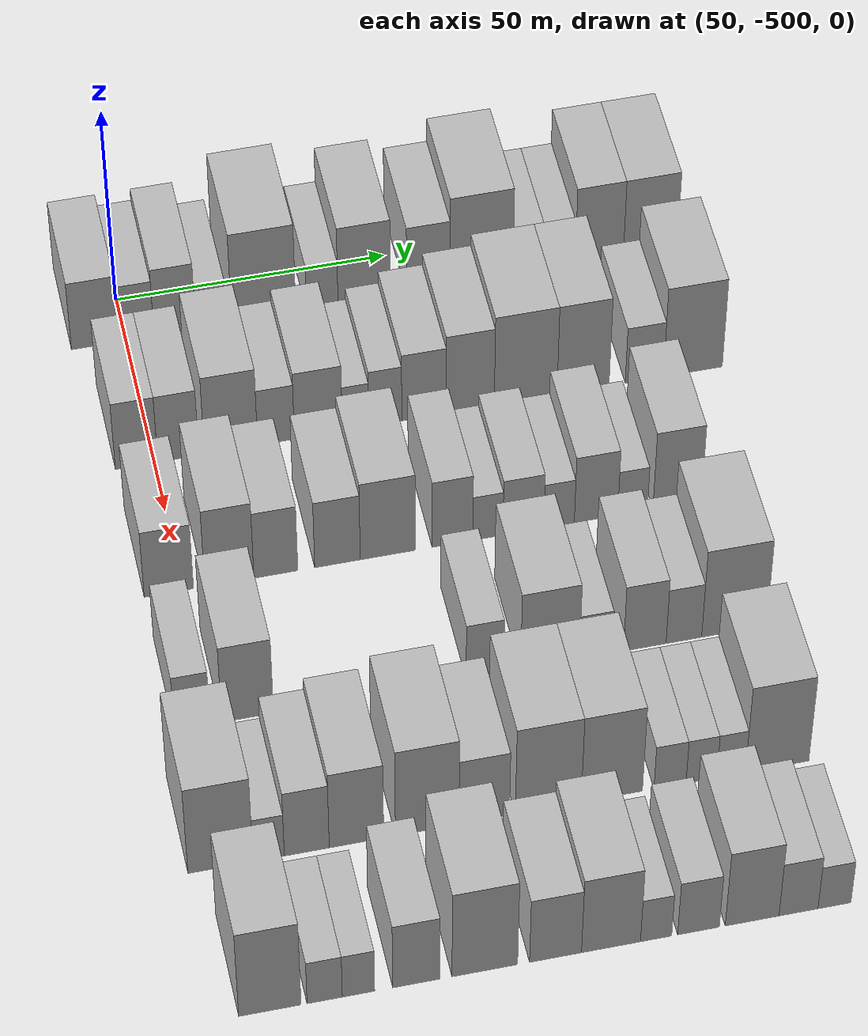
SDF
<sdf version="1.6">
 <world name="default">
  <model name="building_1">
   <static>1</static>
   <pose>50.0000 -505.6453 0 0.000000 0.000000 0.000000</pose>
   <link name="link">
    <pose>0 0 9.00 0 0 0</pose>
    <collision name="collision"><geometry><box><size>20.0000 8.7094 18.0000</size></box></geometry></collision>
    <visual name="visual">
     <cast_shadows>0</cast_shadows>
     <geometry><box><size>20.0000 8.7094 18.0000</size></box></geometry>
     <material>
      <script>
       <uri>model://HANNAS_wall/materials/scripts</uri>
       <uri>model://HANNAS_wall/materials/textures</uri>
       <name>vrc/HANNAS_wall</name>
      </script>
     </material>
    </visual>
   </link>
  </model>
  <model name="building_2">
   <static>1</static>
   <pose>50.0000 -498.0498 0 0.000000 0.000000 0.000000</pose>
   <link name="link">
    <pose>0 0 7.50 0 0 0</pose>
    <collision name="collision"><geometry><box><size>20.0000 6.4816 15.0000</size></box></geometry></collision>
    <visual name="visual">
     <cast_shadows>0</cast_shadows>
     <geometry><box><size>20.0000 6.4816 15.0000</size></box></geometry>
     <material>
      <script>
       <uri>model://HANNAS_wall/materials/scripts</uri>
       <uri>model://HANNAS_wall/materials/textures</uri>
       <name>vrc/HANNAS_wall</name>
      </script>
     </material>
    </visual>
   </link>
  </model>
  <model name="building_3">
   <static>1</static>
   <pose>50.0000 -490.9728 0 0.000000 0.000000 0.000000</pose>
   <link name="link">
    <pose>0 0 9.00 0 0 0</pose>
    <collision name="collision"><geometry><box><size>20.0000 7.6724 18.0000</size></box></geometry></collision>
    <visual name="visual">
     <cast_shadows>0</cast_shadows>
     <geometry><box><size>20.0000 7.6724 18.0000</size></box></geometry>
     <material>
      <script>
       <uri>model://HANNAS_wall/materials/scripts</uri>
       <uri>model://HANNAS_wall/materials/textures</uri>
       <name>vrc/HANNAS_wall</name>
      </script>
     </material>
    </visual>
   </link>
  </model>
  <model name="building_4">
   <static>1</static>
   <pose>50.0000 -484.3131 0 0.000000 0.000000 0.000000</pose>
   <link name="link">
    <pose>0 0 6.00 0 0 0</pose>
    <collision name="collision"><geometry><box><size>20.0000 5.6470 12.0000</size></box></geometry></collision>
    <visual name="visual">
     <cast_shadows>0</cast_shadows>
     <geometry><box><size>20.0000 5.6470 12.0000</size></box></geometry>
     <material>
      <script>
       <uri>model://HANNAS_wall/materials/scripts</uri>
       <uri>model://HANNAS_wall/materials/textures</uri>
       <name>vrc/HANNAS_wall</name>
      </script>
     </material>
    </visual>
   </link>
  </model>
  <model name="building_5">
   <static>1</static>
   <pose>50.0000 -474.5490 0 0.000000 0.000000 0.000000</pose>
   <link name="link">
    <pose>0 0 12.00 0 0 0</pose>
    <collision name="collision"><geometry><box><size>20.0000 11.8813 24.0000</size></box></geometry></collision>
    <visual name="visual">
     <cast_shadows>0</cast_shadows>
     <geometry><box><size>20.0000 11.8813 24.0000</size></box></geometry>
     <material>
      <script>
       <uri>model://HANNAS_wall/materials/scripts</uri>
       <uri>model://HANNAS_wall/materials/textures</uri>
       <name>vrc/HANNAS_wall</name>
      </script>
     </material>
    </visual>
   </link>
  </model>
  <model name="building_6">
   <static>1</static>
   <pose>50.0000 -463.6855 0 0.000000 0.000000 0.000000</pose>
   <link name="link">
    <pose>0 0 6.00 0 0 0</pose>
    <collision name="collision"><geometry><box><size>20.0000 5.8457 12.0000</size></box></geometry></collision>
    <visual name="visual">
     <cast_shadows>0</cast_shadows>
     <geometry><box><size>20.0000 5.8457 12.0000</size></box></geometry>
     <material>
      <script>
       <uri>model://HANNAS_wall/materials/scripts</uri>
       <uri>model://HANNAS_wall/materials/textures</uri>
       <name>vrc/HANNAS_wall</name>
      </script>
     </material>
    </visual>
   </link>
  </model>
  <model name="building_7">
   <static>1</static>
   <pose>50.0000 -455.8654 0 0.000000 0.000000 0.000000</pose>
   <link name="link">
    <pose>0 0 10.50 0 0 0</pose>
    <collision name="collision"><geometry><box><size>20.0000 9.7946 21.0000</size></box></geometry></collision>
    <visual name="visual">
     <cast_shadows>0</cast_shadows>
     <geometry><box><size>20.0000 9.7946 21.0000</size></box></geometry>
     <material>
      <script>
       <uri>model://HANNAS_wall/materials/scripts</uri>
       <uri>model://HANNAS_wall/materials/textures</uri>
       <name>vrc/HANNAS_wall</name>
      </script>
     </material>
    </visual>
   </link>
  </model>
  <model name="building_8">
   <static>1</static>
   <pose>50.0000 -443.9238 0 0.000000 0.000000 0.000000</pose>
   <link name="link">
    <pose>0 0 9.00 0 0 0</pose>
    <collision name="collision"><geometry><box><size>20.0000 8.0886 18.0000</size></box></geometry></collision>
    <visual name="visual">
     <cast_shadows>0</cast_shadows>
     <geometry><box><size>20.0000 8.0886 18.0000</size></box></geometry>
     <material>
      <script>
       <uri>model://HANNAS_wall/materials/scripts</uri>
       <uri>model://HANNAS_wall/materials/textures</uri>
       <name>vrc/HANNAS_wall</name>
      </script>
     </material>
    </visual>
   </link>
  </model>
  <model name="building_9">
   <static>1</static>
   <pose>50.0000 -433.9805 0 0.000000 0.000000 0.000000</pose>
   <link name="link">
    <pose>0 0 12.00 0 0 0</pose>
    <collision name="collision"><geometry><box><size>20.0000 11.7979 24.0000</size></box></geometry></collision>
    <visual name="visual">
     <cast_shadows>0</cast_shadows>
     <geometry><box><size>20.0000 11.7979 24.0000</size></box></geometry>
     <material>
      <script>
       <uri>model://HANNAS_wall/materials/scripts</uri>
       <uri>model://HANNAS_wall/materials/textures</uri>
       <name>vrc/HANNAS_wall</name>
      </script>
     </material>
    </visual>
   </link>
  </model>
  <model name="building_10">
   <static>1</static>
   <pose>50.0000 -425.1136 0 0.000000 0.000000 0.000000</pose>
   <link name="link">
    <pose>0 0 6.00 0 0 0</pose>
    <collision name="collision"><geometry><box><size>20.0000 5.9361 12.0000</size></box></geometry></collision>
    <visual name="visual">
     <cast_shadows>0</cast_shadows>
     <geometry><box><size>20.0000 5.9361 12.0000</size></box></geometry>
     <material>
      <script>
       <uri>model://HANNAS_wall/materials/scripts</uri>
       <uri>model://HANNAS_wall/materials/textures</uri>
       <name>vrc/HANNAS_wall</name>
      </script>
     </material>
    </visual>
   </link>
  </model>
  <model name="building_11">
   <static>1</static>
   <pose>50.0000 -419.2511 0 0.000000 0.000000 0.000000</pose>
   <link name="link">
    <pose>0 0 6.00 0 0 0</pose>
    <collision name="collision"><geometry><box><size>20.0000 5.7888 12.0000</size></box></geometry></collision>
    <visual name="visual">
     <cast_shadows>0</cast_shadows>
     <geometry><box><size>20.0000 5.7888 12.0000</size></box></geometry>
     <material>
      <script>
       <uri>model://HANNAS_wall/materials/scripts</uri>
       <uri>model://HANNAS_wall/materials/textures</uri>
       <name>vrc/HANNAS_wall</name>
      </script>
     </material>
    </visual>
   </link>
  </model>
  <model name="building_12">
   <static>1</static>
   <pose>50.0000 -411.7991 0 0.000000 0.000000 0.000000</pose>
   <link name="link">
    <pose>0 0 10.50 0 0 0</pose>
    <collision name="collision"><geometry><box><size>20.0000 9.1152 21.0000</size></box></geometry></collision>
    <visual name="visual">
     <cast_shadows>0</cast_shadows>
     <geometry><box><size>20.0000 9.1152 21.0000</size></box></geometry>
     <material>
      <script>
       <uri>model://HANNAS_wall/materials/scripts</uri>
       <uri>model://HANNAS_wall/materials/textures</uri>
       <name>vrc/HANNAS_wall</name>
      </script>
     </material>
    </visual>
   </link>
  </model>
  <model name="building_13">
   <static>1</static>
   <pose>50.0000 -402.1448 0 0.000000 0.000000 0.000000</pose>
   <link name="link">
    <pose>0 0 10.50 0 0 0</pose>
    <collision name="collision"><geometry><box><size>20.0000 10.1934 21.0000</size></box></geometry></collision>
    <visual name="visual">
     <cast_shadows>0</cast_shadows>
     <geometry><box><size>20.0000 10.1934 21.0000</size></box></geometry>
     <material>
      <script>
       <uri>model://HANNAS_wall/materials/scripts</uri>
       <uri>model://HANNAS_wall/materials/textures</uri>
       <name>vrc/HANNAS_wall</name>
      </script>
     </material>
    </visual>
   </link>
  </model>
  <model name="building_116">
   <static>1</static>
   <pose>79.0000 -503.1869 0 0.000000 0.000000 0.000000</pose>
   <link name="link">
    <pose>0 0 9.00 0 0 0</pose>
    <collision name="collision"><geometry><box><size>20.0000 7.6262 18.0000</size></box></geometry></collision>
    <visual name="visual">
     <cast_shadows>0</cast_shadows>
     <geometry><box><size>20.0000 7.6262 18.0000</size></box></geometry>
     <material>
      <script>
       <uri>model://HANNAS_wall/materials/scripts</uri>
       <uri>model://HANNAS_wall/materials/textures</uri>
       <name>vrc/HANNAS_wall</name>
      </script>
     </material>
    </visual>
   </link>
  </model>
  <model name="building_117">
   <static>1</static>
   <pose>79.0000 -495.6692 0 0.000000 0.000000 0.000000</pose>
   <link name="link">
    <pose>0 0 9.00 0 0 0</pose>
    <collision name="collision"><geometry><box><size>20.0000 7.4091 18.0000</size></box></geometry></collision>
    <visual name="visual">
     <cast_shadows>0</cast_shadows>
     <geometry><box><size>20.0000 7.4091 18.0000</size></box></geometry>
     <material>
      <script>
       <uri>model://HANNAS_wall/materials/scripts</uri>
       <uri>model://HANNAS_wall/materials/textures</uri>
       <name>vrc/HANNAS_wall</name>
      </script>
     </material>
    </visual>
   </link>
  </model>
  <model name="building_118">
   <static>1</static>
   <pose>79.0000 -486.1451 0 0.000000 0.000000 0.000000</pose>
   <link name="link">
    <pose>0 0 10.50 0 0 0</pose>
    <collision name="collision"><geometry><box><size>20.0000 9.6391 21.0000</size></box></geometry></collision>
    <visual name="visual">
     <cast_shadows>0</cast_shadows>
     <geometry><box><size>20.0000 9.6391 21.0000</size></box></geometry>
     <material>
      <script>
       <uri>model://HANNAS_wall/materials/scripts</uri>
       <uri>model://HANNAS_wall/materials/textures</uri>
       <name>vrc/HANNAS_wall</name>
      </script>
     </material>
    </visual>
   </link>
  </model>
  <model name="building_119">
   <static>1</static>
   <pose>79.0000 -477.9860 0 0.000000 0.000000 0.000000</pose>
   <link name="link">
    <pose>0 0 7.50 0 0 0</pose>
    <collision name="collision"><geometry><box><size>20.0000 6.6792 15.0000</size></box></geometry></collision>
    <visual name="visual">
     <cast_shadows>0</cast_shadows>
     <geometry><box><size>20.0000 6.6792 15.0000</size></box></geometry>
     <material>
      <script>
       <uri>model://HANNAS_wall/materials/scripts</uri>
       <uri>model://HANNAS_wall/materials/textures</uri>
       <name>vrc/HANNAS_wall</name>
      </script>
     </material>
    </visual>
   </link>
  </model>
  <model name="building_120">
   <static>1</static>
   <pose>79.0000 -470.2939 0 0.000000 0.000000 0.000000</pose>
   <link name="link">
    <pose>0 0 9.00 0 0 0</pose>
    <collision name="collision"><geometry><box><size>20.0000 8.7049 18.0000</size></box></geometry></collision>
    <visual name="visual">
     <cast_shadows>0</cast_shadows>
     <geometry><box><size>20.0000 8.7049 18.0000</size></box></geometry>
     <material>
      <script>
       <uri>model://HANNAS_wall/materials/scripts</uri>
       <uri>model://HANNAS_wall/materials/textures</uri>
       <name>vrc/HANNAS_wall</name>
      </script>
     </material>
    </visual>
   </link>
  </model>
  <model name="building_121">
   <static>1</static>
   <pose>79.0000 -463.5202 0 0.000000 0.000000 0.000000</pose>
   <link name="link">
    <pose>0 0 6.00 0 0 0</pose>
    <collision name="collision"><geometry><box><size>20.0000 4.8425 12.0000</size></box></geometry></collision>
    <visual name="visual">
     <cast_shadows>0</cast_shadows>
     <geometry><box><size>20.0000 4.8425 12.0000</size></box></geometry>
     <material>
      <script>
       <uri>model://HANNAS_wall/materials/scripts</uri>
       <uri>model://HANNAS_wall/materials/textures</uri>
       <name>vrc/HANNAS_wall</name>
      </script>
     </material>
    </visual>
   </link>
  </model>
  <model name="building_122">
   <static>1</static>
   <pose>79.0000 -458.0935 0 0.000000 0.000000 0.000000</pose>
   <link name="link">
    <pose>0 0 7.50 0 0 0</pose>
    <collision name="collision"><geometry><box><size>20.0000 6.0108 15.0000</size></box></geometry></collision>
    <visual name="visual">
     <cast_shadows>0</cast_shadows>
     <geometry><box><size>20.0000 6.0108 15.0000</size></box></geometry>
     <material>
      <script>
       <uri>model://HANNAS_wall/materials/scripts</uri>
       <uri>model://HANNAS_wall/materials/textures</uri>
       <name>vrc/HANNAS_wall</name>
      </script>
     </material>
    </visual>
   </link>
  </model>
  <model name="building_123">
   <static>1</static>
   <pose>79.0000 -451.0458 0 0.000000 0.000000 0.000000</pose>
   <link name="link">
    <pose>0 0 9.00 0 0 0</pose>
    <collision name="collision"><geometry><box><size>20.0000 8.0846 18.0000</size></box></geometry></collision>
    <visual name="visual">
     <cast_shadows>0</cast_shadows>
     <geometry><box><size>20.0000 8.0846 18.0000</size></box></geometry>
     <material>
      <script>
       <uri>model://HANNAS_wall/materials/scripts</uri>
       <uri>model://HANNAS_wall/materials/textures</uri>
       <name>vrc/HANNAS_wall</name>
      </script>
     </material>
    </visual>
   </link>
  </model>
  <model name="building_124">
   <static>1</static>
   <pose>79.0000 -442.5810 0 0.000000 0.000000 0.000000</pose>
   <link name="link">
    <pose>0 0 10.50 0 0 0</pose>
    <collision name="collision"><geometry><box><size>20.0000 8.8451 21.0000</size></box></geometry></collision>
    <visual name="visual">
     <cast_shadows>0</cast_shadows>
     <geometry><box><size>20.0000 8.8451 21.0000</size></box></geometry>
     <material>
      <script>
       <uri>model://HANNAS_wall/materials/scripts</uri>
       <uri>model://HANNAS_wall/materials/textures</uri>
       <name>vrc/HANNAS_wall</name>
      </script>
     </material>
    </visual>
   </link>
  </model>
  <model name="building_125">
   <static>1</static>
   <pose>79.0000 -432.3821 0 0.000000 0.000000 0.000000</pose>
   <link name="link">
    <pose>0 0 12.00 0 0 0</pose>
    <collision name="collision"><geometry><box><size>20.0000 11.5528 24.0000</size></box></geometry></collision>
    <visual name="visual">
     <cast_shadows>0</cast_shadows>
     <geometry><box><size>20.0000 11.5528 24.0000</size></box></geometry>
     <material>
      <script>
       <uri>model://HANNAS_wall/materials/scripts</uri>
       <uri>model://HANNAS_wall/materials/textures</uri>
       <name>vrc/HANNAS_wall</name>
      </script>
     </material>
    </visual>
   </link>
  </model>
  <model name="building_126">
   <static>1</static>
   <pose>79.0000 -421.8019 0 0.000000 0.000000 0.000000</pose>
   <link name="link">
    <pose>0 0 12.00 0 0 0</pose>
    <collision name="collision"><geometry><box><size>20.0000 9.6076 24.0000</size></box></geometry></collision>
    <visual name="visual">
     <cast_shadows>0</cast_shadows>
     <geometry><box><size>20.0000 9.6076 24.0000</size></box></geometry>
     <material>
      <script>
       <uri>model://HANNAS_wall/materials/scripts</uri>
       <uri>model://HANNAS_wall/materials/textures</uri>
       <name>vrc/HANNAS_wall</name>
      </script>
     </material>
    </visual>
   </link>
  </model>
  <model name="building_127">
   <static>1</static>
   <pose>79.0000 -410.4574 0 0.000000 0.000000 0.000000</pose>
   <link name="link">
    <pose>0 0 7.50 0 0 0</pose>
    <collision name="collision"><geometry><box><size>20.0000 7.0812 15.0000</size></box></geometry></collision>
    <visual name="visual">
     <cast_shadows>0</cast_shadows>
     <geometry><box><size>20.0000 7.0812 15.0000</size></box></geometry>
     <material>
      <script>
       <uri>model://HANNAS_wall/materials/scripts</uri>
       <uri>model://HANNAS_wall/materials/textures</uri>
       <name>vrc/HANNAS_wall</name>
      </script>
     </material>
    </visual>
   </link>
  </model>
  <model name="building_128">
   <static>1</static>
   <pose>79.0000 -401.4521 0 0.000000 0.000000 0.000000</pose>
   <link name="link">
    <pose>0 0 12.00 0 0 0</pose>
    <collision name="collision"><geometry><box><size>20.0000 10.9295 24.0000</size></box></geometry></collision>
    <visual name="visual">
     <cast_shadows>0</cast_shadows>
     <geometry><box><size>20.0000 10.9295 24.0000</size></box></geometry>
     <material>
      <script>
       <uri>model://HANNAS_wall/materials/scripts</uri>
       <uri>model://HANNAS_wall/materials/textures</uri>
       <name>vrc/HANNAS_wall</name>
      </script>
     </material>
    </visual>
   </link>
  </model>
  <model name="building_231">
   <static>1</static>
   <pose>108.0000 -502.6519 0 0.000000 0.000000 0.000000</pose>
   <link name="link">
    <pose>0 0 9.00 0 0 0</pose>
    <collision name="collision"><geometry><box><size>20.0000 8.6961 18.0000</size></box></geometry></collision>
    <visual name="visual">
     <cast_shadows>0</cast_shadows>
     <geometry><box><size>20.0000 8.6961 18.0000</size></box></geometry>
     <material>
      <script>
       <uri>model://HANNAS_wall/materials/scripts</uri>
       <uri>model://HANNAS_wall/materials/textures</uri>
       <name>vrc/HANNAS_wall</name>
      </script>
     </material>
    </visual>
   </link>
  </model>
  <model name="building_232">
   <static>1</static>
   <pose>108.0000 -491.9632 0 0.000000 0.000000 0.000000</pose>
   <link name="link">
    <pose>0 0 10.50 0 0 0</pose>
    <collision name="collision"><geometry><box><size>20.0000 8.6814 21.0000</size></box></geometry></collision>
    <visual name="visual">
     <cast_shadows>0</cast_shadows>
     <geometry><box><size>20.0000 8.6814 21.0000</size></box></geometry>
     <material>
      <script>
       <uri>model://HANNAS_wall/materials/scripts</uri>
       <uri>model://HANNAS_wall/materials/textures</uri>
       <name>vrc/HANNAS_wall</name>
      </script>
     </material>
    </visual>
   </link>
  </model>
  <model name="building_233">
   <static>1</static>
   <pose>108.0000 -483.7270 0 0.000000 0.000000 0.000000</pose>
   <link name="link">
    <pose>0 0 9.00 0 0 0</pose>
    <collision name="collision"><geometry><box><size>20.0000 7.7909 18.0000</size></box></geometry></collision>
    <visual name="visual">
     <cast_shadows>0</cast_shadows>
     <geometry><box><size>20.0000 7.7909 18.0000</size></box></geometry>
     <material>
      <script>
       <uri>model://HANNAS_wall/materials/scripts</uri>
       <uri>model://HANNAS_wall/materials/textures</uri>
       <name>vrc/HANNAS_wall</name>
      </script>
     </material>
    </visual>
   </link>
  </model>
  <model name="building_234">
   <static>1</static>
   <pose>108.0000 -472.7758 0 0.000000 0.000000 0.000000</pose>
   <link name="link">
    <pose>0 0 9.00 0 0 0</pose>
    <collision name="collision"><geometry><box><size>20.0000 8.1114 18.0000</size></box></geometry></collision>
    <visual name="visual">
     <cast_shadows>0</cast_shadows>
     <geometry><box><size>20.0000 8.1114 18.0000</size></box></geometry>
     <material>
      <script>
       <uri>model://HANNAS_wall/materials/scripts</uri>
       <uri>model://HANNAS_wall/materials/textures</uri>
       <name>vrc/HANNAS_wall</name>
      </script>
     </material>
    </visual>
   </link>
  </model>
  <model name="building_235">
   <static>1</static>
   <pose>108.0000 -463.8039 0 0.000000 0.000000 0.000000</pose>
   <link name="link">
    <pose>0 0 10.50 0 0 0</pose>
    <collision name="collision"><geometry><box><size>20.0000 9.8325 21.0000</size></box></geometry></collision>
    <visual name="visual">
     <cast_shadows>0</cast_shadows>
     <geometry><box><size>20.0000 9.8325 21.0000</size></box></geometry>
     <material>
      <script>
       <uri>model://HANNAS_wall/materials/scripts</uri>
       <uri>model://HANNAS_wall/materials/textures</uri>
       <name>vrc/HANNAS_wall</name>
      </script>
     </material>
    </visual>
   </link>
  </model>
  <model name="building_236">
   <static>1</static>
   <pose>108.0000 -452.2452 0 0.000000 0.000000 0.000000</pose>
   <link name="link">
    <pose>0 0 9.00 0 0 0</pose>
    <collision name="collision"><geometry><box><size>20.0000 7.2849 18.0000</size></box></geometry></collision>
    <visual name="visual">
     <cast_shadows>0</cast_shadows>
     <geometry><box><size>20.0000 7.2849 18.0000</size></box></geometry>
     <material>
      <script>
       <uri>model://HANNAS_wall/materials/scripts</uri>
       <uri>model://HANNAS_wall/materials/textures</uri>
       <name>vrc/HANNAS_wall</name>
      </script>
     </material>
    </visual>
   </link>
  </model>
  <model name="building_237">
   <static>1</static>
   <pose>108.0000 -445.9034 0 0.000000 0.000000 0.000000</pose>
   <link name="link">
    <pose>0 0 6.00 0 0 0</pose>
    <collision name="collision"><geometry><box><size>20.0000 5.3988 12.0000</size></box></geometry></collision>
    <visual name="visual">
     <cast_shadows>0</cast_shadows>
     <geometry><box><size>20.0000 5.3988 12.0000</size></box></geometry>
     <material>
      <script>
       <uri>model://HANNAS_wall/materials/scripts</uri>
       <uri>model://HANNAS_wall/materials/textures</uri>
       <name>vrc/HANNAS_wall</name>
      </script>
     </material>
    </visual>
   </link>
  </model>
  <model name="building_238">
   <static>1</static>
   <pose>108.0000 -439.5211 0 0.000000 0.000000 0.000000</pose>
   <link name="link">
    <pose>0 0 7.50 0 0 0</pose>
    <collision name="collision"><geometry><box><size>20.0000 7.3658 15.0000</size></box></geometry></collision>
    <visual name="visual">
     <cast_shadows>0</cast_shadows>
     <geometry><box><size>20.0000 7.3658 15.0000</size></box></geometry>
     <material>
      <script>
       <uri>model://HANNAS_wall/materials/scripts</uri>
       <uri>model://HANNAS_wall/materials/textures</uri>
       <name>vrc/HANNAS_wall</name>
      </script>
     </material>
    </visual>
   </link>
  </model>
  <model name="building_239">
   <static>1</static>
   <pose>108.0000 -433.0848 0 0.000000 0.000000 0.000000</pose>
   <link name="link">
    <pose>0 0 6.00 0 0 0</pose>
    <collision name="collision"><geometry><box><size>20.0000 5.5068 12.0000</size></box></geometry></collision>
    <visual name="visual">
     <cast_shadows>0</cast_shadows>
     <geometry><box><size>20.0000 5.5068 12.0000</size></box></geometry>
     <material>
      <script>
       <uri>model://HANNAS_wall/materials/scripts</uri>
       <uri>model://HANNAS_wall/materials/textures</uri>
       <name>vrc/HANNAS_wall</name>
      </script>
     </material>
    </visual>
   </link>
  </model>
  <model name="building_240">
   <static>1</static>
   <pose>108.0000 -426.4070 0 0.000000 0.000000 0.000000</pose>
   <link name="link">
    <pose>0 0 9.00 0 0 0</pose>
    <collision name="collision"><geometry><box><size>20.0000 7.8487 18.0000</size></box></geometry></collision>
    <visual name="visual">
     <cast_shadows>0</cast_shadows>
     <geometry><box><size>20.0000 7.8487 18.0000</size></box></geometry>
     <material>
      <script>
       <uri>model://HANNAS_wall/materials/scripts</uri>
       <uri>model://HANNAS_wall/materials/textures</uri>
       <name>vrc/HANNAS_wall</name>
      </script>
     </material>
    </visual>
   </link>
  </model>
  <model name="building_241">
   <static>1</static>
   <pose>108.0000 -419.7957 0 0.000000 0.000000 0.000000</pose>
   <link name="link">
    <pose>0 0 6.00 0 0 0</pose>
    <collision name="collision"><geometry><box><size>20.0000 5.3739 12.0000</size></box></geometry></collision>
    <visual name="visual">
     <cast_shadows>0</cast_shadows>
     <geometry><box><size>20.0000 5.3739 12.0000</size></box></geometry>
     <material>
      <script>
       <uri>model://HANNAS_wall/materials/scripts</uri>
       <uri>model://HANNAS_wall/materials/textures</uri>
       <name>vrc/HANNAS_wall</name>
      </script>
     </material>
    </visual>
   </link>
  </model>
  <model name="building_242">
   <static>1</static>
   <pose>108.0000 -411.7180 0 0.000000 0.000000 0.000000</pose>
   <link name="link">
    <pose>0 0 10.50 0 0 0</pose>
    <collision name="collision"><geometry><box><size>20.0000 8.7815 21.0000</size></box></geometry></collision>
    <visual name="visual">
     <cast_shadows>0</cast_shadows>
     <geometry><box><size>20.0000 8.7815 21.0000</size></box></geometry>
     <material>
      <script>
       <uri>model://HANNAS_wall/materials/scripts</uri>
       <uri>model://HANNAS_wall/materials/textures</uri>
       <name>vrc/HANNAS_wall</name>
      </script>
     </material>
    </visual>
   </link>
  </model>
  <model name="building_347">
   <static>1</static>
   <pose>137.0000 -503.9081 0 0.000000 0.000000 0.000000</pose>
   <link name="link">
    <pose>0 0 7.50 0 0 0</pose>
    <collision name="collision"><geometry><box><size>20.0000 6.1839 15.0000</size></box></geometry></collision>
    <visual name="visual">
     <cast_shadows>0</cast_shadows>
     <geometry><box><size>20.0000 6.1839 15.0000</size></box></geometry>
     <material>
      <script>
       <uri>model://HANNAS_wall/materials/scripts</uri>
       <uri>model://HANNAS_wall/materials/textures</uri>
       <name>vrc/HANNAS_wall</name>
      </script>
     </material>
    </visual>
   </link>
  </model>
  <model name="building_348">
   <static>1</static>
   <pose>137.0000 -494.3367 0 0.000000 0.000000 0.000000</pose>
   <link name="link">
    <pose>0 0 10.50 0 0 0</pose>
    <collision name="collision"><geometry><box><size>20.0000 8.9589 21.0000</size></box></geometry></collision>
    <visual name="visual">
     <cast_shadows>0</cast_shadows>
     <geometry><box><size>20.0000 8.9589 21.0000</size></box></geometry>
     <material>
      <script>
       <uri>model://HANNAS_wall/materials/scripts</uri>
       <uri>model://HANNAS_wall/materials/textures</uri>
       <name>vrc/HANNAS_wall</name>
      </script>
     </material>
    </visual>
   </link>
  </model>
  <model name="building_349">
   <static>1</static>
   <pose>137.0000 -453.0053 0 0.000000 0.000000 0.000000</pose>
   <link name="link">
    <pose>0 0 7.50 0 0 0</pose>
    <collision name="collision"><geometry><box><size>20.0000 6.5680 15.0000</size></box></geometry></collision>
    <visual name="visual">
     <cast_shadows>0</cast_shadows>
     <geometry><box><size>20.0000 6.5680 15.0000</size></box></geometry>
     <material>
      <script>
       <uri>model://HANNAS_wall/materials/scripts</uri>
       <uri>model://HANNAS_wall/materials/textures</uri>
       <name>vrc/HANNAS_wall</name>
      </script>
     </material>
    </visual>
   </link>
  </model>
  <model name="building_350">
   <static>1</static>
   <pose>137.0000 -441.5563 0 0.000000 0.000000 0.000000</pose>
   <link name="link">
    <pose>0 0 10.50 0 0 0</pose>
    <collision name="collision"><geometry><box><size>20.0000 10.3300 21.0000</size></box></geometry></collision>
    <visual name="visual">
     <cast_shadows>0</cast_shadows>
     <geometry><box><size>20.0000 10.3300 21.0000</size></box></geometry>
     <material>
      <script>
       <uri>model://HANNAS_wall/materials/scripts</uri>
       <uri>model://HANNAS_wall/materials/textures</uri>
       <name>vrc/HANNAS_wall</name>
      </script>
     </material>
    </visual>
   </link>
  </model>
  <model name="building_351">
   <static>1</static>
   <pose>137.0000 -433.4831 0 0.000000 0.000000 0.000000</pose>
   <link name="link">
    <pose>0 0 6.00 0 0 0</pose>
    <collision name="collision"><geometry><box><size>20.0000 5.8165 12.0000</size></box></geometry></collision>
    <visual name="visual">
     <cast_shadows>0</cast_shadows>
     <geometry><box><size>20.0000 5.8165 12.0000</size></box></geometry>
     <material>
      <script>
       <uri>model://HANNAS_wall/materials/scripts</uri>
       <uri>model://HANNAS_wall/materials/textures</uri>
       <name>vrc/HANNAS_wall</name>
      </script>
     </material>
    </visual>
   </link>
  </model>
  <model name="building_352">
   <static>1</static>
   <pose>137.0000 -424.7986 0 0.000000 0.000000 0.000000</pose>
   <link name="link">
    <pose>0 0 9.00 0 0 0</pose>
    <collision name="collision"><geometry><box><size>20.0000 7.5524 18.0000</size></box></geometry></collision>
    <visual name="visual">
     <cast_shadows>0</cast_shadows>
     <geometry><box><size>20.0000 7.5524 18.0000</size></box></geometry>
     <material>
      <script>
       <uri>model://HANNAS_wall/materials/scripts</uri>
       <uri>model://HANNAS_wall/materials/textures</uri>
       <name>vrc/HANNAS_wall</name>
      </script>
     </material>
    </visual>
   </link>
  </model>
  <model name="building_353">
   <static>1</static>
   <pose>137.0000 -417.8656 0 0.000000 0.000000 0.000000</pose>
   <link name="link">
    <pose>0 0 7.50 0 0 0</pose>
    <collision name="collision"><geometry><box><size>20.0000 6.3137 15.0000</size></box></geometry></collision>
    <visual name="visual">
     <cast_shadows>0</cast_shadows>
     <geometry><box><size>20.0000 6.3137 15.0000</size></box></geometry>
     <material>
      <script>
       <uri>model://HANNAS_wall/materials/scripts</uri>
       <uri>model://HANNAS_wall/materials/textures</uri>
       <name>vrc/HANNAS_wall</name>
      </script>
     </material>
    </visual>
   </link>
  </model>
  <model name="building_354">
   <static>1</static>
   <pose>137.0000 -408.9428 0 0.000000 0.000000 0.000000</pose>
   <link name="link">
    <pose>0 0 12.00 0 0 0</pose>
    <collision name="collision"><geometry><box><size>20.0000 11.5318 24.0000</size></box></geometry></collision>
    <visual name="visual">
     <cast_shadows>0</cast_shadows>
     <geometry><box><size>20.0000 11.5318 24.0000</size></box></geometry>
     <material>
      <script>
       <uri>model://HANNAS_wall/materials/scripts</uri>
       <uri>model://HANNAS_wall/materials/textures</uri>
       <name>vrc/HANNAS_wall</name>
      </script>
     </material>
    </visual>
   </link>
  </model>
  <model name="building_464">
   <static>1</static>
   <pose>166.0000 -504.5062 0 0.000000 0.000000 0.000000</pose>
   <link name="link">
    <pose>0 0 12.00 0 0 0</pose>
    <collision name="collision"><geometry><box><size>20.0000 10.9876 24.0000</size></box></geometry></collision>
    <visual name="visual">
     <cast_shadows>0</cast_shadows>
     <geometry><box><size>20.0000 10.9876 24.0000</size></box></geometry>
     <material>
      <script>
       <uri>model://HANNAS_wall/materials/scripts</uri>
       <uri>model://HANNAS_wall/materials/textures</uri>
       <name>vrc/HANNAS_wall</name>
      </script>
     </material>
    </visual>
   </link>
  </model>
  <model name="building_465">
   <static>1</static>
   <pose>166.0000 -496.3556 0 0.000000 0.000000 0.000000</pose>
   <link name="link">
    <pose>0 0 6.00 0 0 0</pose>
    <collision name="collision"><geometry><box><size>20.0000 5.3136 12.0000</size></box></geometry></collision>
    <visual name="visual">
     <cast_shadows>0</cast_shadows>
     <geometry><box><size>20.0000 5.3136 12.0000</size></box></geometry>
     <material>
      <script>
       <uri>model://HANNAS_wall/materials/scripts</uri>
       <uri>model://HANNAS_wall/materials/textures</uri>
       <name>vrc/HANNAS_wall</name>
      </script>
     </material>
    </visual>
   </link>
  </model>
  <model name="building_466">
   <static>1</static>
   <pose>166.0000 -489.8929 0 0.000000 0.000000 0.000000</pose>
   <link name="link">
    <pose>0 0 9.00 0 0 0</pose>
    <collision name="collision"><geometry><box><size>20.0000 7.6117 18.0000</size></box></geometry></collision>
    <visual name="visual">
     <cast_shadows>0</cast_shadows>
     <geometry><box><size>20.0000 7.6117 18.0000</size></box></geometry>
     <material>
      <script>
       <uri>model://HANNAS_wall/materials/scripts</uri>
       <uri>model://HANNAS_wall/materials/textures</uri>
       <name>vrc/HANNAS_wall</name>
      </script>
     </material>
    </visual>
   </link>
  </model>
  <model name="building_467">
   <static>1</static>
   <pose>166.0000 -481.4600 0 0.000000 0.000000 0.000000</pose>
   <link name="link">
    <pose>0 0 10.50 0 0 0</pose>
    <collision name="collision"><geometry><box><size>20.0000 9.2541 21.0000</size></box></geometry></collision>
    <visual name="visual">
     <cast_shadows>0</cast_shadows>
     <geometry><box><size>20.0000 9.2541 21.0000</size></box></geometry>
     <material>
      <script>
       <uri>model://HANNAS_wall/materials/scripts</uri>
       <uri>model://HANNAS_wall/materials/textures</uri>
       <name>vrc/HANNAS_wall</name>
      </script>
     </material>
    </visual>
   </link>
  </model>
  <model name="building_468">
   <static>1</static>
   <pose>166.0000 -469.4089 0 0.000000 0.000000 0.000000</pose>
   <link name="link">
    <pose>0 0 12.00 0 0 0</pose>
    <collision name="collision"><geometry><box><size>20.0000 10.8480 24.0000</size></box></geometry></collision>
    <visual name="visual">
     <cast_shadows>0</cast_shadows>
     <geometry><box><size>20.0000 10.8480 24.0000</size></box></geometry>
     <material>
      <script>
       <uri>model://HANNAS_wall/materials/scripts</uri>
       <uri>model://HANNAS_wall/materials/textures</uri>
       <name>vrc/HANNAS_wall</name>
      </script>
     </material>
    </visual>
   </link>
  </model>
  <model name="building_469">
   <static>1</static>
   <pose>166.0000 -459.6645 0 0.000000 0.000000 0.000000</pose>
   <link name="link">
    <pose>0 0 9.00 0 0 0</pose>
    <collision name="collision"><geometry><box><size>20.0000 8.6408 18.0000</size></box></geometry></collision>
    <visual name="visual">
     <cast_shadows>0</cast_shadows>
     <geometry><box><size>20.0000 8.6408 18.0000</size></box></geometry>
     <material>
      <script>
       <uri>model://HANNAS_wall/materials/scripts</uri>
       <uri>model://HANNAS_wall/materials/textures</uri>
       <name>vrc/HANNAS_wall</name>
      </script>
     </material>
    </visual>
   </link>
  </model>
  <model name="building_470">
   <static>1</static>
   <pose>166.0000 -448.6649 0 0.000000 0.000000 0.000000</pose>
   <link name="link">
    <pose>0 0 12.00 0 0 0</pose>
    <collision name="collision"><geometry><box><size>20.0000 11.3583 24.0000</size></box></geometry></collision>
    <visual name="visual">
     <cast_shadows>0</cast_shadows>
     <geometry><box><size>20.0000 11.3583 24.0000</size></box></geometry>
     <material>
      <script>
       <uri>model://HANNAS_wall/materials/scripts</uri>
       <uri>model://HANNAS_wall/materials/textures</uri>
       <name>vrc/HANNAS_wall</name>
      </script>
     </material>
    </visual>
   </link>
  </model>
  <model name="building_471">
   <static>1</static>
   <pose>166.0000 -437.7035 0 0.000000 0.000000 0.000000</pose>
   <link name="link">
    <pose>0 0 12.00 0 0 0</pose>
    <collision name="collision"><geometry><box><size>20.0000 10.5647 24.0000</size></box></geometry></collision>
    <visual name="visual">
     <cast_shadows>0</cast_shadows>
     <geometry><box><size>20.0000 10.5647 24.0000</size></box></geometry>
     <material>
      <script>
       <uri>model://HANNAS_wall/materials/scripts</uri>
       <uri>model://HANNAS_wall/materials/textures</uri>
       <name>vrc/HANNAS_wall</name>
      </script>
     </material>
    </visual>
   </link>
  </model>
  <model name="building_472">
   <static>1</static>
   <pose>166.0000 -427.6399 0 0.000000 0.000000 0.000000</pose>
   <link name="link">
    <pose>0 0 6.00 0 0 0</pose>
    <collision name="collision"><geometry><box><size>20.0000 5.5625 12.0000</size></box></geometry></collision>
    <visual name="visual">
     <cast_shadows>0</cast_shadows>
     <geometry><box><size>20.0000 5.5625 12.0000</size></box></geometry>
     <material>
      <script>
       <uri>model://HANNAS_wall/materials/scripts</uri>
       <uri>model://HANNAS_wall/materials/textures</uri>
       <name>vrc/HANNAS_wall</name>
      </script>
     </material>
    </visual>
   </link>
  </model>
  <model name="building_473">
   <static>1</static>
   <pose>166.0000 -422.1964 0 0.000000 0.000000 0.000000</pose>
   <link name="link">
    <pose>0 0 6.00 0 0 0</pose>
    <collision name="collision"><geometry><box><size>20.0000 5.3245 12.0000</size></box></geometry></collision>
    <visual name="visual">
     <cast_shadows>0</cast_shadows>
     <geometry><box><size>20.0000 5.3245 12.0000</size></box></geometry>
     <material>
      <script>
       <uri>model://HANNAS_wall/materials/scripts</uri>
       <uri>model://HANNAS_wall/materials/textures</uri>
       <name>vrc/HANNAS_wall</name>
      </script>
     </material>
    </visual>
   </link>
  </model>
  <model name="building_474">
   <static>1</static>
   <pose>166.0000 -417.0422 0 0.000000 0.000000 0.000000</pose>
   <link name="link">
    <pose>0 0 6.00 0 0 0</pose>
    <collision name="collision"><geometry><box><size>20.0000 4.9839 12.0000</size></box></geometry></collision>
    <visual name="visual">
     <cast_shadows>0</cast_shadows>
     <geometry><box><size>20.0000 4.9839 12.0000</size></box></geometry>
     <material>
      <script>
       <uri>model://HANNAS_wall/materials/scripts</uri>
       <uri>model://HANNAS_wall/materials/textures</uri>
       <name>vrc/HANNAS_wall</name>
      </script>
     </material>
    </visual>
   </link>
  </model>
  <model name="building_475">
   <static>1</static>
   <pose>166.0000 -409.0261 0 0.000000 0.000000 0.000000</pose>
   <link name="link">
    <pose>0 0 12.00 0 0 0</pose>
    <collision name="collision"><geometry><box><size>20.0000 11.0481 24.0000</size></box></geometry></collision>
    <visual name="visual">
     <cast_shadows>0</cast_shadows>
     <geometry><box><size>20.0000 11.0481 24.0000</size></box></geometry>
     <material>
      <script>
       <uri>model://HANNAS_wall/materials/scripts</uri>
       <uri>model://HANNAS_wall/materials/textures</uri>
       <name>vrc/HANNAS_wall</name>
      </script>
     </material>
    </visual>
   </link>
  </model>
  <model name="building_585">
   <static>1</static>
   <pose>195.0000 -501.8490 0 0.000000 0.000000 0.000000</pose>
   <link name="link">
    <pose>0 0 12.00 0 0 0</pose>
    <collision name="collision"><geometry><box><size>20.0000 10.3021 24.0000</size></box></geometry></collision>
    <visual name="visual">
     <cast_shadows>0</cast_shadows>
     <geometry><box><size>20.0000 10.3021 24.0000</size></box></geometry>
     <material>
      <script>
       <uri>model://HANNAS_wall/materials/scripts</uri>
       <uri>model://HANNAS_wall/materials/textures</uri>
       <name>vrc/HANNAS_wall</name>
      </script>
     </material>
    </visual>
   </link>
  </model>
  <model name="building_586">
   <static>1</static>
   <pose>195.0000 -492.7737 0 0.000000 0.000000 0.000000</pose>
   <link name="link">
    <pose>0 0 6.00 0 0 0</pose>
    <collision name="collision"><geometry><box><size>20.0000 5.8484 12.0000</size></box></geometry></collision>
    <visual name="visual">
     <cast_shadows>0</cast_shadows>
     <geometry><box><size>20.0000 5.8484 12.0000</size></box></geometry>
     <material>
      <script>
       <uri>model://HANNAS_wall/materials/scripts</uri>
       <uri>model://HANNAS_wall/materials/textures</uri>
       <name>vrc/HANNAS_wall</name>
      </script>
     </material>
    </visual>
   </link>
  </model>
  <model name="building_587">
   <static>1</static>
   <pose>195.0000 -487.1622 0 0.000000 0.000000 0.000000</pose>
   <link name="link">
    <pose>0 0 6.00 0 0 0</pose>
    <collision name="collision"><geometry><box><size>20.0000 5.3747 12.0000</size></box></geometry></collision>
    <visual name="visual">
     <cast_shadows>0</cast_shadows>
     <geometry><box><size>20.0000 5.3747 12.0000</size></box></geometry>
     <material>
      <script>
       <uri>model://HANNAS_wall/materials/scripts</uri>
       <uri>model://HANNAS_wall/materials/textures</uri>
       <name>vrc/HANNAS_wall</name>
      </script>
     </material>
    </visual>
   </link>
  </model>
  <model name="building_588">
   <static>1</static>
   <pose>195.0000 -477.5377 0 0.000000 0.000000 0.000000</pose>
   <link name="link">
    <pose>0 0 9.00 0 0 0</pose>
    <collision name="collision"><geometry><box><size>20.0000 7.8743 18.0000</size></box></geometry></collision>
    <visual name="visual">
     <cast_shadows>0</cast_shadows>
     <geometry><box><size>20.0000 7.8743 18.0000</size></box></geometry>
     <material>
      <script>
       <uri>model://HANNAS_wall/materials/scripts</uri>
       <uri>model://HANNAS_wall/materials/textures</uri>
       <name>vrc/HANNAS_wall</name>
      </script>
     </material>
    </visual>
   </link>
  </model>
  <model name="building_589">
   <static>1</static>
   <pose>195.0000 -466.1115 0 0.000000 0.000000 0.000000</pose>
   <link name="link">
    <pose>0 0 12.00 0 0 0</pose>
    <collision name="collision"><geometry><box><size>20.0000 10.9780 24.0000</size></box></geometry></collision>
    <visual name="visual">
     <cast_shadows>0</cast_shadows>
     <geometry><box><size>20.0000 10.9780 24.0000</size></box></geometry>
     <material>
      <script>
       <uri>model://HANNAS_wall/materials/scripts</uri>
       <uri>model://HANNAS_wall/materials/textures</uri>
       <name>vrc/HANNAS_wall</name>
      </script>
     </material>
    </visual>
   </link>
  </model>
  <model name="building_590">
   <static>1</static>
   <pose>195.0000 -454.2547 0 0.000000 0.000000 0.000000</pose>
   <link name="link">
    <pose>0 0 9.00 0 0 0</pose>
    <collision name="collision"><geometry><box><size>20.0000 8.7355 18.0000</size></box></geometry></collision>
    <visual name="visual">
     <cast_shadows>0</cast_shadows>
     <geometry><box><size>20.0000 8.7355 18.0000</size></box></geometry>
     <material>
      <script>
       <uri>model://HANNAS_wall/materials/scripts</uri>
       <uri>model://HANNAS_wall/materials/textures</uri>
       <name>vrc/HANNAS_wall</name>
      </script>
     </material>
    </visual>
   </link>
  </model>
  <model name="building_591">
   <static>1</static>
   <pose>195.0000 -444.9188 0 0.000000 0.000000 0.000000</pose>
   <link name="link">
    <pose>0 0 10.50 0 0 0</pose>
    <collision name="collision"><geometry><box><size>20.0000 9.9363 21.0000</size></box></geometry></collision>
    <visual name="visual">
     <cast_shadows>0</cast_shadows>
     <geometry><box><size>20.0000 9.9363 21.0000</size></box></geometry>
     <material>
      <script>
       <uri>model://HANNAS_wall/materials/scripts</uri>
       <uri>model://HANNAS_wall/materials/textures</uri>
       <name>vrc/HANNAS_wall</name>
      </script>
     </material>
    </visual>
   </link>
  </model>
  <model name="building_592">
   <static>1</static>
   <pose>195.0000 -437.3096 0 0.000000 0.000000 0.000000</pose>
   <link name="link">
    <pose>0 0 6.00 0 0 0</pose>
    <collision name="collision"><geometry><box><size>20.0000 5.2821 12.0000</size></box></geometry></collision>
    <visual name="visual">
     <cast_shadows>0</cast_shadows>
     <geometry><box><size>20.0000 5.2821 12.0000</size></box></geometry>
     <material>
      <script>
       <uri>model://HANNAS_wall/materials/scripts</uri>
       <uri>model://HANNAS_wall/materials/textures</uri>
       <name>vrc/HANNAS_wall</name>
      </script>
     </material>
    </visual>
   </link>
  </model>
  <model name="building_593">
   <static>1</static>
   <pose>195.0000 -430.1360 0 0.000000 0.000000 0.000000</pose>
   <link name="link">
    <pose>0 0 7.50 0 0 0</pose>
    <collision name="collision"><geometry><box><size>20.0000 7.0651 15.0000</size></box></geometry></collision>
    <visual name="visual">
     <cast_shadows>0</cast_shadows>
     <geometry><box><size>20.0000 7.0651 15.0000</size></box></geometry>
     <material>
      <script>
       <uri>model://HANNAS_wall/materials/scripts</uri>
       <uri>model://HANNAS_wall/materials/textures</uri>
       <name>vrc/HANNAS_wall</name>
      </script>
     </material>
    </visual>
   </link>
  </model>
  <model name="building_594">
   <static>1</static>
   <pose>195.0000 -421.0347 0 0.000000 0.000000 0.000000</pose>
   <link name="link">
    <pose>0 0 10.50 0 0 0</pose>
    <collision name="collision"><geometry><box><size>20.0000 9.1376 21.0000</size></box></geometry></collision>
    <visual name="visual">
     <cast_shadows>0</cast_shadows>
     <geometry><box><size>20.0000 9.1376 21.0000</size></box></geometry>
     <material>
      <script>
       <uri>model://HANNAS_wall/materials/scripts</uri>
       <uri>model://HANNAS_wall/materials/textures</uri>
       <name>vrc/HANNAS_wall</name>
      </script>
     </material>
    </visual>
   </link>
  </model>
  <model name="building_595">
   <static>1</static>
   <pose>195.0000 -413.1416 0 0.000000 0.000000 0.000000</pose>
   <link name="link">
    <pose>0 0 7.50 0 0 0</pose>
    <collision name="collision"><geometry><box><size>20.0000 6.6486 15.0000</size></box></geometry></collision>
    <visual name="visual">
     <cast_shadows>0</cast_shadows>
     <geometry><box><size>20.0000 6.6486 15.0000</size></box></geometry>
     <material>
      <script>
       <uri>model://HANNAS_wall/materials/scripts</uri>
       <uri>model://HANNAS_wall/materials/textures</uri>
       <name>vrc/HANNAS_wall</name>
      </script>
     </material>
    </visual>
   </link>
  </model>
  <model name="building_596">
   <static>1</static>
   <pose>195.0000 -407.0053 0 0.000000 0.000000 0.000000</pose>
   <link name="link">
    <pose>0 0 6.00 0 0 0</pose>
    <collision name="collision"><geometry><box><size>20.0000 5.6241 12.0000</size></box></geometry></collision>
    <visual name="visual">
     <cast_shadows>0</cast_shadows>
     <geometry><box><size>20.0000 5.6241 12.0000</size></box></geometry>
     <material>
      <script>
       <uri>model://HANNAS_wall/materials/scripts</uri>
       <uri>model://HANNAS_wall/materials/textures</uri>
       <name>vrc/HANNAS_wall</name>
      </script>
     </material>
    </visual>
   </link>
  </model>
 </world>
</sdf>
